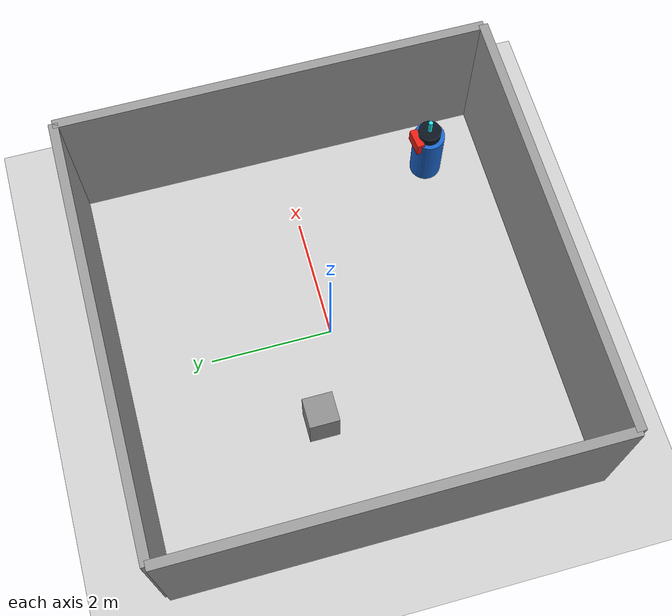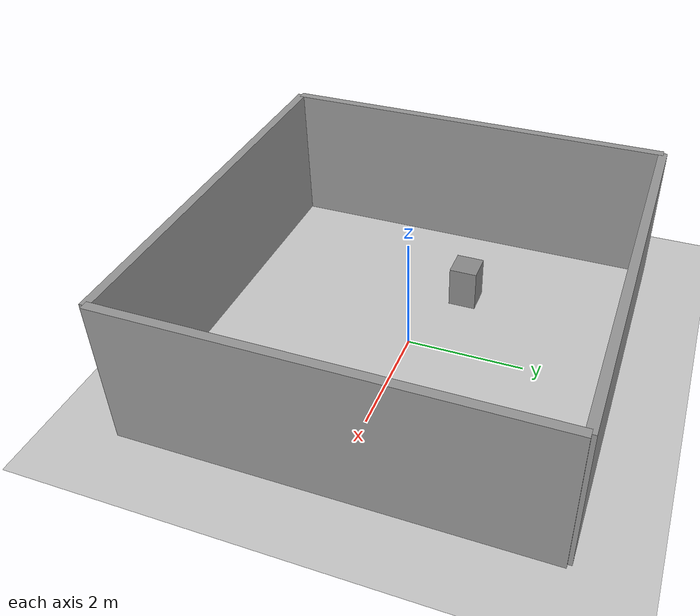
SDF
<sdf version="1.7">
 <world name="default">
  <plugin name="socnav_plugin" filename="libSocNavPlugin.so">
   <robot_name>robot</robot_name>
   <trajectory_file>/home/hunav_gz_classic_ws/SocNav3_trajectories/src6/000003875.json</trajectory_file>
   <human_slots>2</human_slots>
   <goal_angle_mesh>
    <angle_threshold>2.58162227437</angle_threshold>
    <uri>/home/hunav_gz_classic_ws/src/socnav_gazebo_reproducer/meshes/000003875_goal_angle_00.stl</uri>
   </goal_angle_mesh>
  </plugin>
  <light name="sun" type="directional">
   <pose>0 0 10 0 -0 0</pose>
   <diffuse>0.8 0.8 0.8 1</diffuse>
   <specular>0.2 0.2 0.2 1</specular>
   <attenuation>
    <range>1000</range>
    <constant>0.9</constant>
    <linear>0.01</linear>
    <quadratic>0.001</quadratic>
   </attenuation>
   <direction>-0.5 0.1 -0.9</direction>
   <spot><inner_angle>0</inner_angle><outer_angle>0</outer_angle><falloff>0</falloff></spot>
  </light>
  <model name="ground_plane">
   <static>1</static>
   <link name="link">
    <collision name="collision">
     <geometry><plane><normal>0 0 1</normal><size>100 100</size></plane></geometry>
     <surface><friction><ode><mu>100</mu><mu2>50</mu2></ode></friction></surface>
    </collision>
    <visual name="visual">
     <cast_shadows>0</cast_shadows>
     <geometry><plane><normal>0 0 1</normal><size>100 100</size></plane></geometry>
     <material>
      <script><uri>file://media/materials/scripts/kitchen.material</uri><name>Kitchen/CounterTop_H</name></script>
     </material>
    </visual>
   </link>
  </model>
  <gravity>0 0 -9.8</gravity>
  <magnetic_field>6e-06 2.3e-05 -4.2e-05</magnetic_field>
  <atmosphere type="adiabatic"/>
  <physics type="ode">
   <max_step_size>0.001</max_step_size>
   <real_time_factor>1</real_time_factor>
   <real_time_update_rate>1000</real_time_update_rate>
  </physics>
  <scene><ambient>0.4 0.4 0.4 1</ambient><background>0.7 0.7 0.7 1</background><shadows>1</shadows></scene>
  <audio><device>default</device></audio>
  <spherical_coordinates>
   <surface_model>EARTH_WGS84</surface_model>
   <latitude_deg>0</latitude_deg>
   <longitude_deg>0</longitude_deg>
   <elevation>0</elevation>
   <heading_deg>0</heading_deg>
  </spherical_coordinates>
  <model name="robot">
   <pose>2.5681787917923735 -2.4024831491508967 0.5 0 0 1.6884398157394138</pose>
   <link name="link">
    <collision name="collision">
     <geometry><cylinder><radius>0.2625938559075893</radius><length>1.0</length></cylinder></geometry>
    </collision>
    <visual name="visual">
     <geometry><cylinder><radius>0.2625938559075893</radius><length>1.0</length></cylinder></geometry>
     <material><ambient>0.1 0.4 0.8 1</ambient><diffuse>0.1 0.4 0.8 1</diffuse></material>
    </visual>
    <visual name="robot_top">
     <pose>0 0 0.58 0 0 0</pose>
     <geometry><cylinder><radius>0.18906757625346432</radius><length>0.16</length></cylinder></geometry>
     <material><ambient>0.04 0.08 0.12 1</ambient><diffuse>0.04 0.08 0.12 1</diffuse></material>
    </visual>
    <visual name="robot_front">
     <pose>0.220578838962375 0 0.44 0 0 0</pose>
     <geometry><box><size>0.12604505083564288 0.33612013556171433 0.24</size></box></geometry>
     <material><ambient>0.9 0.12 0.08 1</ambient><diffuse>0.9 0.12 0.08 1</diffuse></material>
    </visual>
    <visual name="robot_sensor">
     <pose>0 0 0.78 0 0 0</pose>
     <geometry><cylinder><radius>0.03676313982706251</radius><length>0.24</length></cylinder></geometry>
     <material><ambient>0.1 0.9 0.9 1</ambient><diffuse>0.1 0.9 0.9 1</diffuse></material>
    </visual>
   </link>
  </model>
  <model name="static_object_0">
   <static>true</static>
   <pose>-1.4736501102956592 0.5644694096353735 0.375 0 0 0</pose>
   <link name="link">
    <collision name="collision">
     <geometry><box><size>0.48146774531015546 0.48146774531015546 0.75</size></box></geometry>
    </collision>
    <visual name="visual">
     <geometry><box><size>0.48146774531015546 0.48146774531015546 0.75</size></box></geometry>
     <material><ambient>0.55 0.55 0.55 1</ambient><diffuse>0.55 0.55 0.55 1</diffuse></material>
    </visual>
   </link>
  </model>
  <model name="simple_world_test">
   <link name="Wall_0">
    <collision name="Wall_0_Collision">
     <geometry><box><size>6.914700656481577 0.15 2.5</size></box></geometry>
     <pose>0 0 1.25 0 -0 0</pose>
    </collision>
    <visual name="Wall_0_Visual">
     <pose>0 0 1.25 0 -0 0</pose>
     <geometry><box><size>6.914700656481577 0.15 2.5</size></box></geometry>
     <material>
      <script><uri>file://media/materials/scripts/gazebo.material</uri><name>Gazebo/Grey</name></script>
      <ambient>1 1 1 1</ambient>
     </material>
     <meta><layer>0</layer></meta>
    </visual>
    <pose>3.447350328240789 0.0 0 0 -0 -1.5707963267948966</pose>
   </link>
   <link name="Wall_1">
    <collision name="Wall_1_Collision">
     <geometry><box><size>6.914700656481577 0.15 2.5</size></box></geometry>
     <pose>0 0 1.25 0 -0 0</pose>
    </collision>
    <visual name="Wall_1_Visual">
     <pose>0 0 1.25 0 -0 0</pose>
     <geometry><box><size>6.914700656481577 0.15 2.5</size></box></geometry>
     <material>
      <script><uri>file://media/materials/scripts/gazebo.material</uri><name>Gazebo/Grey</name></script>
      <ambient>1 1 1 1</ambient>
     </material>
     <meta><layer>0</layer></meta>
    </visual>
    <pose>0.0 -3.447350328240789 0 0 -0 -3.141592653589793</pose>
   </link>
   <link name="Wall_2">
    <collision name="Wall_2_Collision">
     <geometry><box><size>6.914700656481577 0.15 2.5</size></box></geometry>
     <pose>0 0 1.25 0 -0 0</pose>
    </collision>
    <visual name="Wall_2_Visual">
     <pose>0 0 1.25 0 -0 0</pose>
     <geometry><box><size>6.914700656481577 0.15 2.5</size></box></geometry>
     <material>
      <script><uri>file://media/materials/scripts/gazebo.material</uri><name>Gazebo/Grey</name></script>
      <ambient>1 1 1 1</ambient>
     </material>
     <meta><layer>0</layer></meta>
    </visual>
    <pose>-3.447350328240789 0.0 0 0 -0 1.5707963267948966</pose>
   </link>
   <link name="Wall_3">
    <collision name="Wall_3_Collision">
     <geometry><box><size>6.914700656481577 0.15 2.5</size></box></geometry>
     <pose>0 0 1.25 0 -0 0</pose>
    </collision>
    <visual name="Wall_3_Visual">
     <pose>0 0 1.25 0 -0 0</pose>
     <geometry><box><size>6.914700656481577 0.15 2.5</size></box></geometry>
     <material>
      <script><uri>file://media/materials/scripts/gazebo.material</uri><name>Gazebo/Grey</name></script>
      <ambient>1 1 1 1</ambient>
     </material>
     <meta><layer>0</layer></meta>
    </visual>
    <pose>0.0 3.447350328240789 0 0 -0 0.0</pose>
   </link>
   <static>1</static>
  </model>
 </world>
</sdf>
